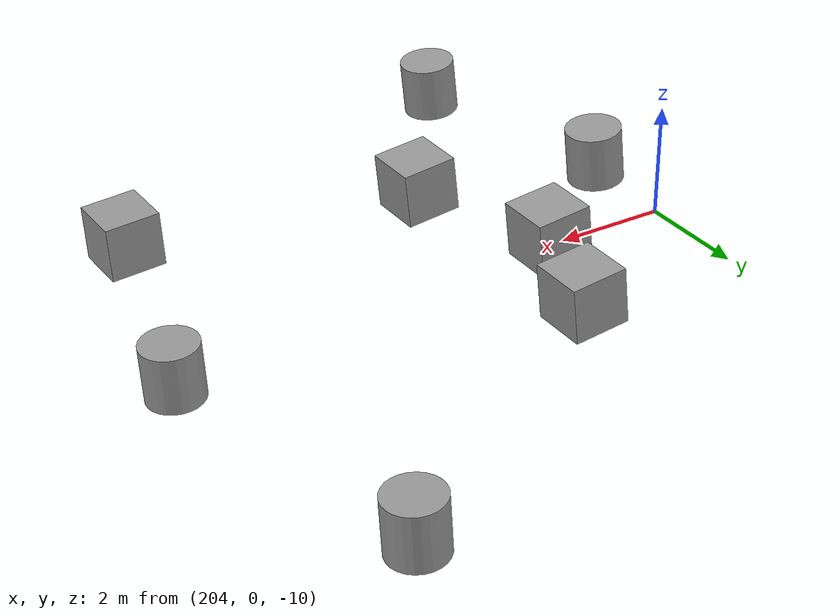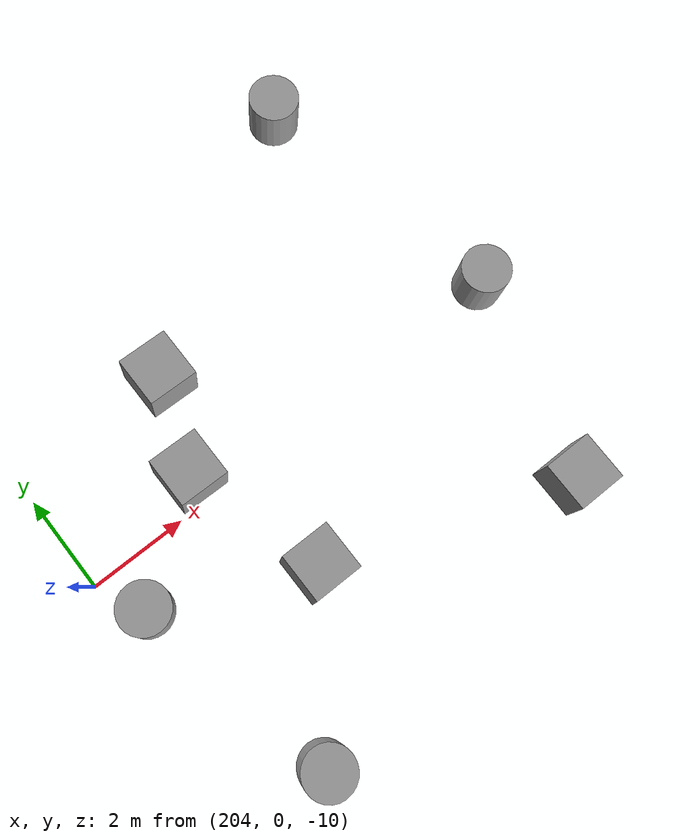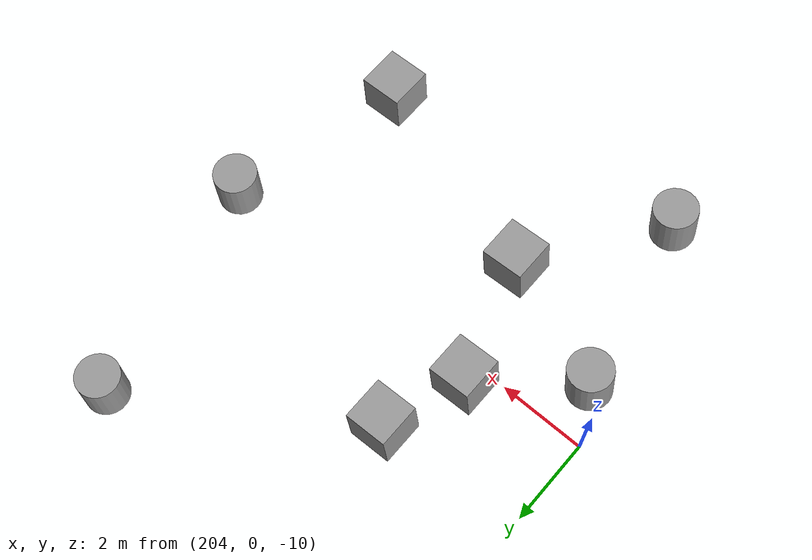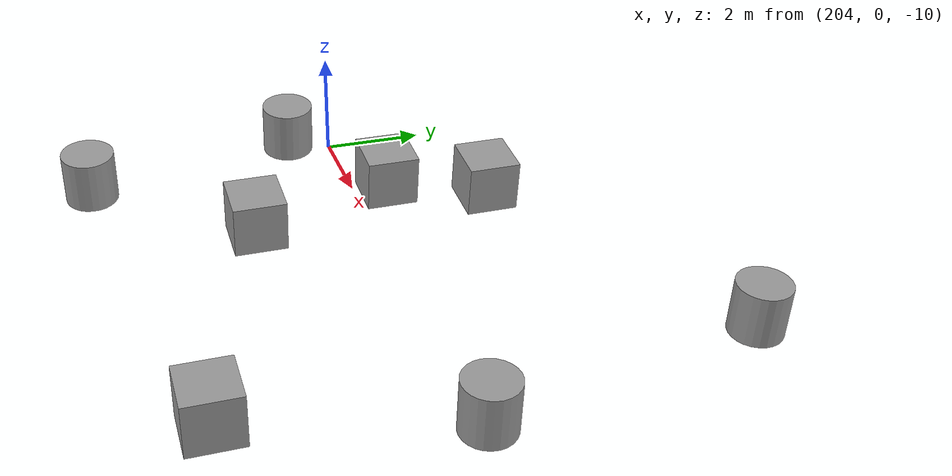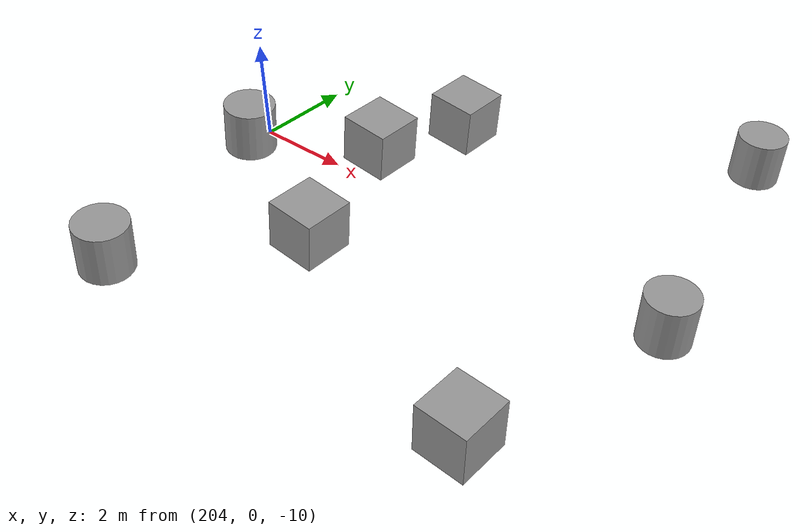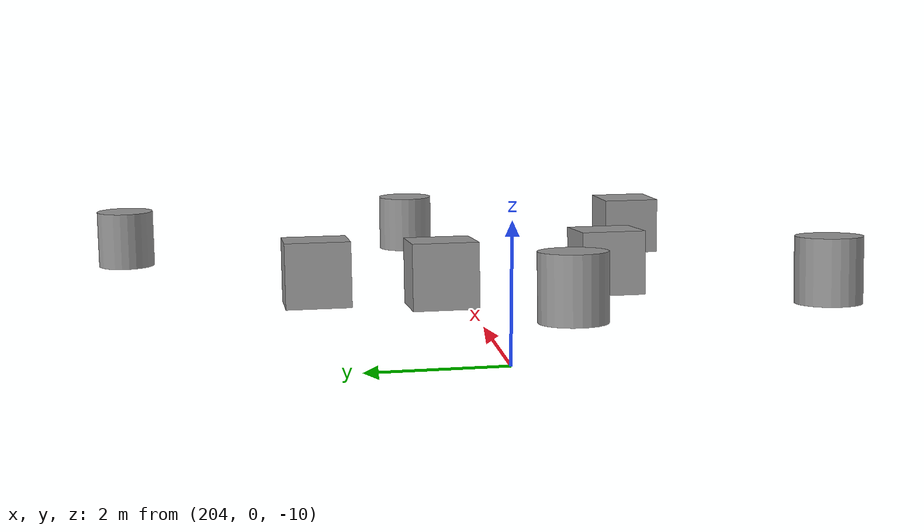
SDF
<sdf version="1.6">
 <world name="munkholmen">
  <physics name="default_physics" default="1" type="ode">
   <max_step_size>0.01</max_step_size>
   <real_time_factor>1</real_time_factor>
   <real_time_update_rate>100</real_time_update_rate>
   <ode>
    <solver>
     <type>quick</type>
     <iters>50</iters>
     <sor>1.2</sor>
     <use_dynamic_moi_rescaling>0</use_dynamic_moi_rescaling>
    </solver>
    <constraints>
     <cfm>0</cfm>
     <erp>0.2</erp>
     <contact_max_correcting_vel>100</contact_max_correcting_vel>
     <contact_surface_layer>0.001</contact_surface_layer>
    </constraints>
   </ode>
  </physics>
  <scene>
   <ambient>0.01 0.01 0.01 1</ambient>
   <sky><clouds><speed>12</speed></clouds></sky>
   <shadows>1</shadows>
   <background>0.7 0.7 0.7 1</background>
  </scene>
  <spherical_coordinates>
   <latitude_deg>63.452</latitude_deg>
   <longitude_deg>10.3845</longitude_deg>
   <surface_model>EARTH_WGS84</surface_model>
   <elevation>0</elevation>
   <heading_deg>0</heading_deg>
  </spherical_coordinates>
  <light name="sun_diffuse_1" type="directional">
   <pose>-200 -200 100 0 -0 0</pose>
   <diffuse>0.6 0.6 0.6 1</diffuse>
   <specular>0 0 0 1</specular>
   <direction>-0.3 -0.3 -1</direction>
  </light>
  <light name="sun_diffuse_2" type="directional">
   <pose>-100 50 200 0 -0 0</pose>
   <diffuse>0.6 0.6 0.6 1</diffuse>
   <specular>0 0 0 1</specular>
   <direction>-0.3 -0.3 -1</direction>
  </light>
  <light name="sun_diffuse_3" type="directional">
   <pose>-150 -130 50 0 -0 0</pose>
   <diffuse>0.6 0.6 0.6 1</diffuse>
   <specular>0.2 0.2 0.2 1</specular>
   <direction>0.5 0.5 -1</direction>
  </light>
  <plugin name="underwater_current_plugin" filename="libuuv_underwater_current_ros_plugin.so">
   <namespace>hydrodynamics</namespace>
   <constant_current>
    <topic>current_velocity</topic>
    <velocity><mean>0</mean><min>0</min><max>5</max><mu>0.0</mu><noiseAmp>0.0</noiseAmp></velocity>
    <horizontal_angle>
     <mean>0</mean>
     <min>-3.141592653589793238</min>
     <max>3.141592653589793238</max>
     <mu>0.0</mu>
     <noiseAmp>0.0</noiseAmp>
    </horizontal_angle>
    <vertical_angle>
     <mean>0</mean>
     <min>-3.141592653589793238</min>
     <max>3.141592653589793238</max>
     <mu>0.0</mu>
     <noiseAmp>0.0</noiseAmp>
    </vertical_angle>
   </constant_current>
  </plugin>
  <plugin name="sc_interface" filename="libuuv_sc_ros_interface_plugin.so"/>
  <gravity>0 0 -9.8</gravity>
  <magnetic_field>6e-06 2.3e-05 -4.2e-05</magnetic_field>
  <atmosphere type="adiabatic"/>
  <model name="unit_box_0">
   <pose>206.698 0.529194 -9.32551 -2.2e-05 0.11266 -0.000194</pose>
   <link name="link">
    <inertial>
     <mass>1</mass>
     <inertia>
      <ixx>0.166667</ixx>
      <ixy>0</ixy>
      <ixz>0</ixz>
      <iyy>0.166667</iyy>
      <iyz>0</iyz>
      <izz>0.166667</izz>
     </inertia>
    </inertial>
    <collision name="collision"><geometry><box><size>1 1 1</size></box></geometry></collision>
    <visual name="visual">
     <geometry><box><size>1 1 1</size></box></geometry>
     <material>
      <script><name>Gazebo/Grey</name><uri>file://media/materials/scripts/gazebo.material</uri></script>
     </material>
    </visual>
   </link>
  </model>
  <model name="unit_cylinder_0">
   <pose>213.517 0.1838 -9.92771 -0.015758 0.064286 -0.238991</pose>
   <link name="link">
    <inertial>
     <mass>1</mass>
     <inertia><ixx>0.145833</ixx><ixy>0</ixy><ixz>0</ixz><iyy>0.145833</iyy><iyz>0</iyz><izz>0.125</izz></inertia>
    </inertial>
    <collision name="collision">
     <geometry><cylinder><radius>0.5</radius><length>1</length></cylinder></geometry>
    </collision>
    <visual name="visual">
     <geometry><cylinder><radius>0.5</radius><length>1</length></cylinder></geometry>
     <material>
      <script><name>Gazebo/Grey</name><uri>file://media/materials/scripts/gazebo.material</uri></script>
     </material>
    </visual>
   </link>
  </model>
  <model name="unit_box_1">
   <pose>212.403 -3.93773 -9.85477 -2e-06 0.066 2e-05</pose>
   <link name="link">
    <inertial>
     <mass>1</mass>
     <inertia>
      <ixx>0.166667</ixx>
      <ixy>0</ixy>
      <ixz>0</ixz>
      <iyy>0.166667</iyy>
      <iyz>0</iyz>
      <izz>0.166667</izz>
     </inertia>
    </inertial>
    <collision name="collision"><geometry><box><size>1 1 1</size></box></geometry></collision>
    <visual name="visual">
     <geometry><box><size>1 1 1</size></box></geometry>
     <material>
      <script><name>Gazebo/Grey</name><uri>file://media/materials/scripts/gazebo.material</uri></script>
     </material>
    </visual>
   </link>
  </model>
  <model name="unit_cylinder_2">
   <pose>212.443 5.49829 -9.85731 -0.008244 0.065662 -0.12473</pose>
   <link name="link">
    <inertial>
     <mass>1</mass>
     <inertia><ixx>0.145833</ixx><ixy>0</ixy><ixz>0</ixz><iyy>0.145833</iyy><iyz>0</iyz><izz>0.125</izz></inertia>
    </inertial>
    <collision name="collision">
     <geometry><cylinder><radius>0.5</radius><length>1</length></cylinder></geometry>
    </collision>
    <visual name="visual">
     <geometry><cylinder><radius>0.5</radius><length>1</length></cylinder></geometry>
     <material>
      <script><name>Gazebo/Grey</name><uri>file://media/materials/scripts/gazebo.material</uri></script>
     </material>
    </visual>
   </link>
  </model>
  <model name="unit_box_2">
   <pose>207.35 2.36668 -9.39928 0.000239 0.112659 0.002126</pose>
   <link name="link">
    <inertial>
     <mass>1</mass>
     <inertia>
      <ixx>0.166667</ixx>
      <ixy>0</ixy>
      <ixz>0</ixz>
      <iyy>0.166667</iyy>
      <iyz>0</iyz>
      <izz>0.166667</izz>
     </inertia>
    </inertial>
    <collision name="collision"><geometry><box><size>1 1 1</size></box></geometry></collision>
    <visual name="visual">
     <geometry><box><size>1 1 1</size></box></geometry>
     <material>
      <script><name>Gazebo/Grey</name><uri>file://media/materials/scripts/gazebo.material</uri></script>
     </material>
    </visual>
   </link>
  </model>
  <model name="unit_cylinder_3">
   <pose>204.642 -1.00003 -9.09182 3.0323 -0.02743 -1.81936</pose>
   <link name="link">
    <inertial>
     <mass>1</mass>
     <inertia><ixx>0.145833</ixx><ixy>0</ixy><ixz>0</ixz><iyy>0.145833</iyy><iyz>0</iyz><izz>0.125</izz></inertia>
    </inertial>
    <collision name="collision">
     <geometry><cylinder><radius>0.5</radius><length>1</length></cylinder></geometry>
    </collision>
    <visual name="visual">
     <geometry><cylinder><radius>0.5</radius><length>1</length></cylinder></geometry>
     <material>
      <script><name>Gazebo/Grey</name><uri>file://media/materials/scripts/gazebo.material</uri></script>
     </material>
    </visual>
   </link>
  </model>
  <model name="unit_cylinder_1_0">
   <pose>205.483 -5.08869 -9.18797 -0.006834 0.112461 -0.059836</pose>
   <link name="link">
    <inertial>
     <mass>1</mass>
     <inertia><ixx>0.145833</ixx><ixy>0</ixy><ixz>0</ixz><iyy>0.145833</iyy><iyz>0</iyz><izz>0.125</izz></inertia>
    </inertial>
    <collision name="collision">
     <geometry><cylinder><radius>0.5</radius><length>1</length></cylinder></geometry>
    </collision>
    <visual name="visual">
     <geometry><cylinder><radius>0.5</radius><length>1</length></cylinder></geometry>
     <material>
      <script><name>Gazebo/Grey</name><uri>file://media/materials/scripts/gazebo.material</uri></script>
     </material>
    </visual>
   </link>
  </model>
  <model name="unit_box_3">
   <pose>207.543 -2.25218 -9.42023 0.000199 0.112561 0.0021</pose>
   <link name="link">
    <inertial>
     <mass>1</mass>
     <inertia>
      <ixx>0.166667</ixx>
      <ixy>0</ixy>
      <ixz>0</ixz>
      <iyy>0.166667</iyy>
      <iyz>0</iyz>
      <izz>0.166667</izz>
     </inertia>
    </inertial>
    <collision name="collision"><geometry><box><size>1 1 1</size></box></geometry></collision>
    <visual name="visual">
     <geometry><box><size>1 1 1</size></box></geometry>
     <material>
      <script><name>Gazebo/Grey</name><uri>file://media/materials/scripts/gazebo.material</uri></script>
     </material>
    </visual>
   </link>
  </model>
 </world>
</sdf>
